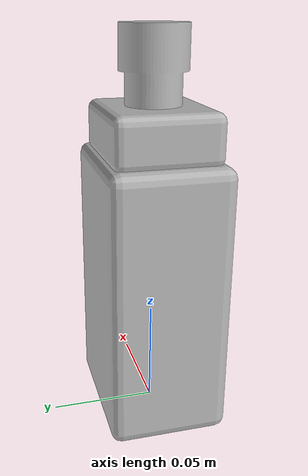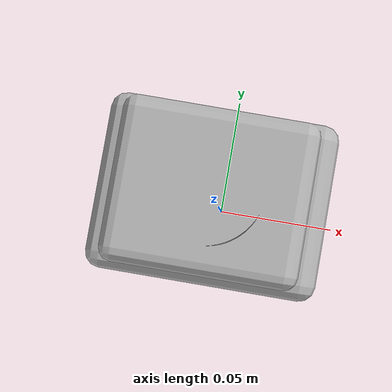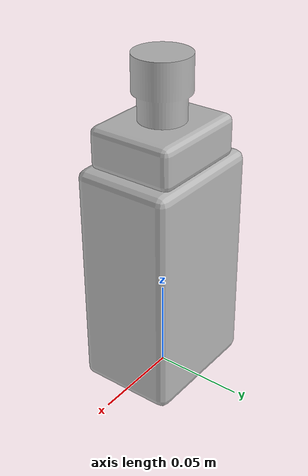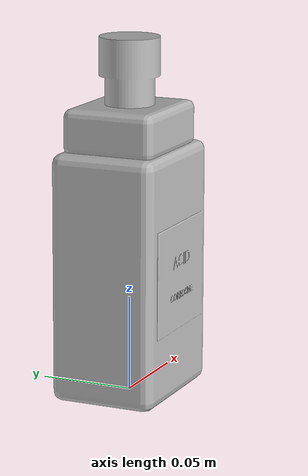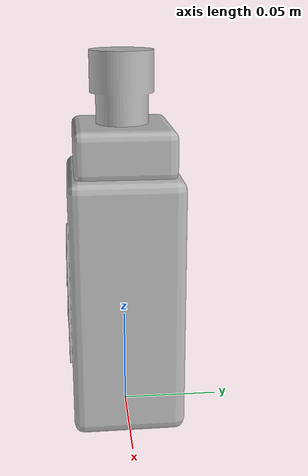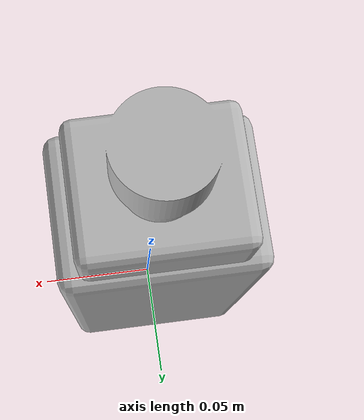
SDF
<?xml version="1.0"?>
<sdf version="1.10">
  <model name="reagent_bottle_acid">
    <static>false</static>
    <link name="base_link">
      <inertial>
        <pose>0.000000 0.000000 0.093500 0 0 0</pose>
        <mass>0.6000</mass>
        <inertia>
          <ixx>0.00190525</ixx><ixy>0</ixy><ixz>0</ixz>
          <iyy>0.00201490</iyy><iyz>0</iyz>
          <izz>0.00042325</izz>
        </inertia>
      </inertial>
      <collision name="collision">
        <pose>0.000000 0.000000 0.093500 0 0 0</pose>
        <geometry>
          <box><size>0.073000 0.056000 0.187000</size></box>
        </geometry>
        <surface>
          <friction><ode><mu>0.9</mu><mu2>0.9</mu2></ode></friction>
        </surface>
      </collision>
      <visual name="visual">
        <geometry>
          <mesh><uri>model://reagent_bottle_acid/meshes/reagent_bottle_acid.obj</uri></mesh>
        </geometry>
      </visual>
    </link>
  </model>
</sdf>
